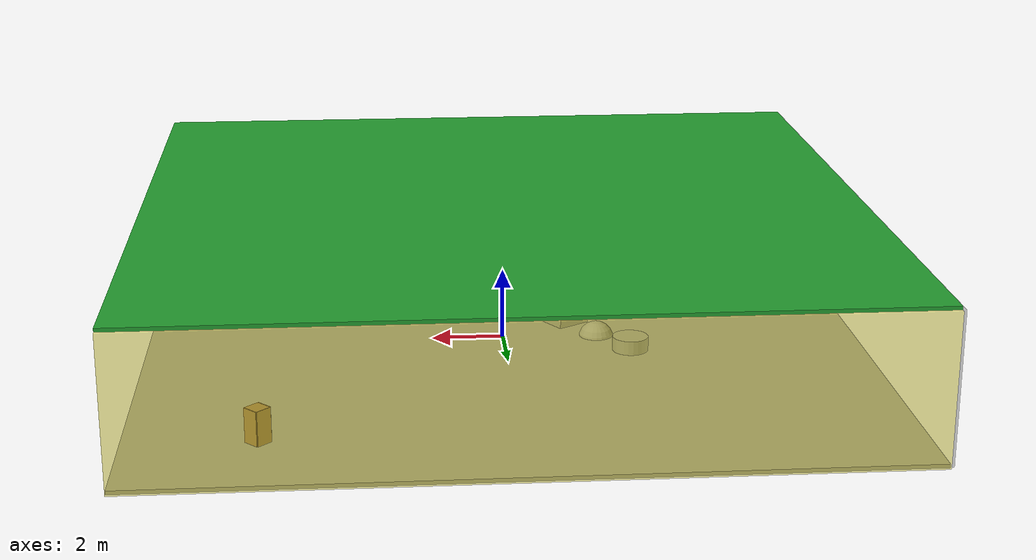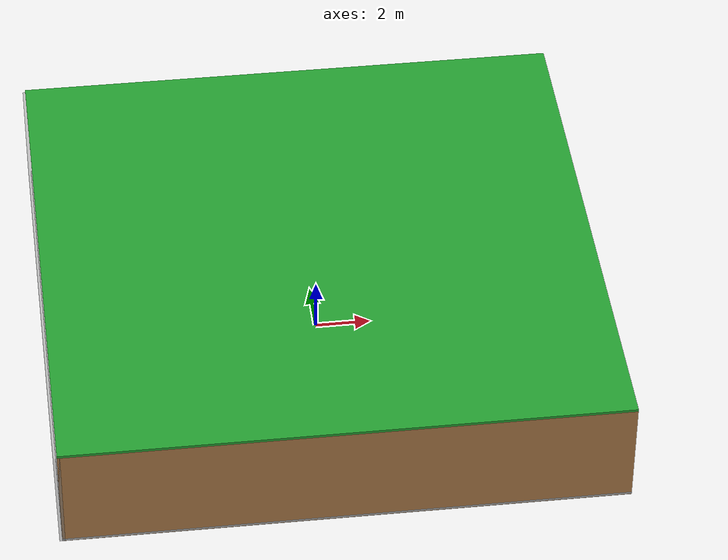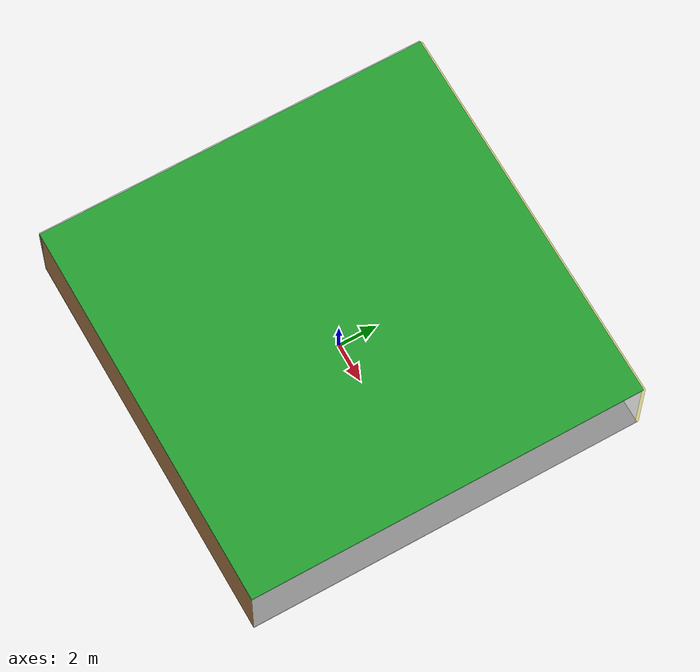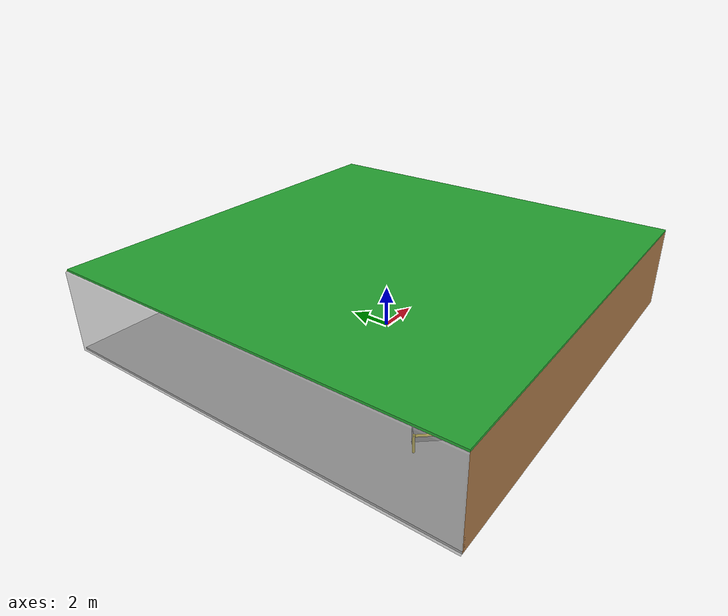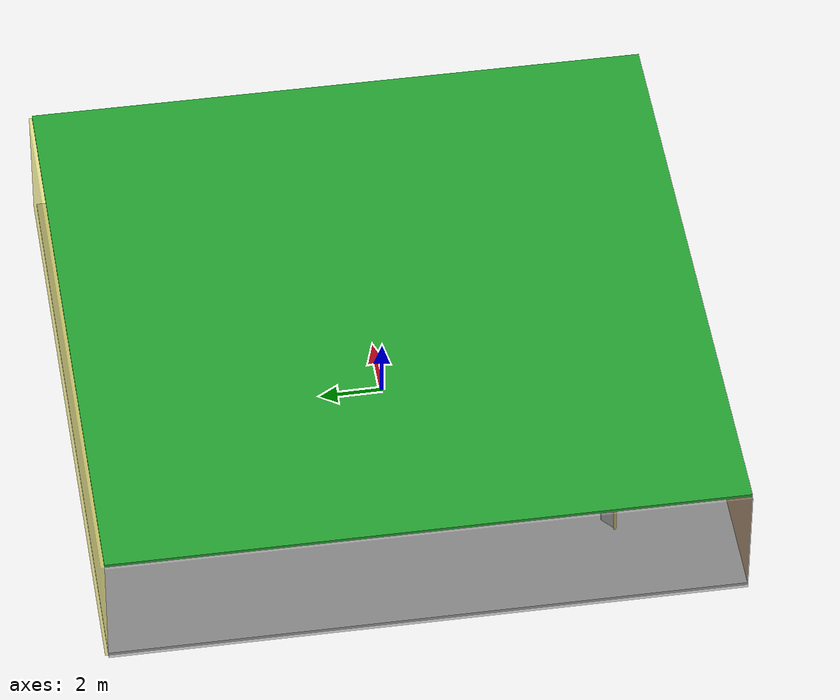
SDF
<sdf version="1.4">
 <world name="default">
  <physics type="ode">
   <max_step_size>0.001</max_step_size>
   <real_time_factor>1</real_time_factor>
   <real_time_update_rate>1000</real_time_update_rate>
   <gravity>0 0 -9.8</gravity>
  </physics>
  <scene><ambient>0.4 0.4 0.4 1</ambient><background>0.7 0.7 0.7 1</background><shadows>1</shadows></scene>
  <model name="Surrounding">
   <static>1</static>
   <link name="Ceiling">
    <collision name="Ceiling_Collision"><geometry><box><size>20 20 0.1</size></box></geometry></collision>
    <visual name="Ceiling_Visual">
     <geometry><box><size>20 20 0.1</size></box></geometry>
     <material>
      <script><uri>file://media/materials/scripts/gazebo.material</uri><name>Gazebo/Green</name></script>
     </material>
    </visual>
    <pose>0 0 4.05 0 0 0</pose>
   </link>
   <link name="Wall_South">
    <collision name="Wall_South_Collision">
     <geometry><box><size>20 0 4</size></box></geometry>
     <pose>0 0 2 0 -0 0</pose>
    </collision>
    <visual name="Wall_South_Visual">
     <pose>0 0 2 0 -0 0</pose>
     <geometry><box><size>20 0 4</size></box></geometry>
     <material>
      <script><uri>file://media/materials/scripts/gazebo.material</uri><name>Gazebo/Wood</name></script>
     </material>
    </visual>
    <velocity_decay><linear>0</linear><angular>0</angular></velocity_decay>
    <pose>0 -10 0 0 -0 0</pose>
   </link>
   <link name="Wall_East">
    <collision name="Wall_21_Collision">
     <geometry><box><size>20 0 4</size></box></geometry>
     <pose>0 0 2 0 -0 0</pose>
    </collision>
    <visual name="Wall_21_Visual">
     <pose>0 0 2 0 -0 0</pose>
     <geometry><box><size>20 0 4</size></box></geometry>
     <material>
      <script><uri>file://media/materials/scripts/gazebo.material</uri><name>Gazebo/GreyTransparent</name></script>
     </material>
    </visual>
    <velocity_decay><linear>0</linear><angular>0</angular></velocity_decay>
    <pose>10 0 0 0 -0 1.5708</pose>
   </link>
   <link name="Wall_North">
    <collision name="Wall_22_Collision">
     <geometry><box><size>20 0.2 4</size></box></geometry>
     <pose>0 0 2 0 -0 0</pose>
    </collision>
    <visual name="Wall_22_Visual">
     <pose>0 0 2 0 -0 0</pose>
     <geometry><box><size>20 0.2 4</size></box></geometry>
     <material>
      <script>
       <uri>file://media/materials/scripts/gazebo.material</uri>
       <name>Gazebo/YellowTransparent</name>
      </script>
     </material>
    </visual>
    <velocity_decay><linear>0</linear><angular>0</angular></velocity_decay>
    <pose>0 10 0 0 -0 0</pose>
   </link>
   <link name="Wall_West">
    <collision name="Wall_23_Collision">
     <geometry><box><size>20 0.2 4</size></box></geometry>
     <pose>0 0 2 0 -0 0</pose>
    </collision>
    <visual name="Wall_23_Visual">
     <pose>0 0 2 0 -0 0</pose>
     <geometry><box><size>20 0.2 4</size></box></geometry>
     <material>
      <script><uri>file://media/materials/scripts/gazebo.material</uri><name>Gazebo/GreyTransparent</name></script>
     </material>
    </visual>
    <velocity_decay><linear>0</linear><angular>0</angular></velocity_decay>
    <pose>-10 0 0 0 0 -1.5708</pose>
   </link>
   <link name="Ground_link">
    <collision name="collision">
     <pose>0 0 .05 0 -0 0</pose>
     <geometry><box><size>20 20 0.1</size></box></geometry>
    </collision>
    <visual name="visual">
     <pose>0 0 .05 0 -0 0</pose>
     <geometry><box><size>20 20 0.1</size></box></geometry>
     <material>
      <script><uri>file://media/materials/scripts/gazebo.material</uri><name>Gazebo/PioneerBody</name></script>
     </material>
    </visual>
   </link>
   <static>1</static>
  </model>
  <spherical_coordinates>
   <surface_model>EARTH_WGS84</surface_model>
   <latitude_deg>0</latitude_deg>
   <longitude_deg>0</longitude_deg>
   <elevation>0</elevation>
   <heading_deg>0</heading_deg>
  </spherical_coordinates>
  <light name="lightball_0" type="diffuse">
   <diffuse>0.8 0.8 0.8 1</diffuse>
   <specular>0.2 0.2 0.2 1</specular>
   <attenuation>
    <range>100</range>
    <constant>0.7</constant>
    <linear>0.01</linear>
    <quadratic>0.001</quadratic>
   </attenuation>
   <direction>-0.5 0.1 -0.9</direction>
   <pose>4.11773153546 -2.31514935674 1.01867431596 0 0 0</pose>
  </light>
  <light name="lightball_1" type="diffuse">
   <diffuse>0.8 0.8 0.8 1</diffuse>
   <specular>0.2 0.2 0.2 1</specular>
   <attenuation>
    <range>100</range>
    <constant>0.7</constant>
    <linear>0.01</linear>
    <quadratic>0.001</quadratic>
   </attenuation>
   <direction>-0.5 0.1 -0.9</direction>
   <pose>-0.502159092545 3.6665691886 2.66166178383 0 0 0</pose>
  </light>
  <light name="lightball_2" type="diffuse">
   <diffuse>0.8 0.8 0.8 1</diffuse>
   <specular>0.2 0.2 0.2 1</specular>
   <attenuation>
    <range>100</range>
    <constant>0.7</constant>
    <linear>0.01</linear>
    <quadratic>0.001</quadratic>
   </attenuation>
   <direction>-0.5 0.1 -0.9</direction>
   <pose>2.20493953064 9.53964335167 3.49362148469 0 0 0</pose>
  </light>
  <light name="lightball_3" type="diffuse">
   <diffuse>0.8 0.8 0.8 1</diffuse>
   <specular>0.2 0.2 0.2 1</specular>
   <attenuation>
    <range>100</range>
    <constant>0.7</constant>
    <linear>0.01</linear>
    <quadratic>0.001</quadratic>
   </attenuation>
   <direction>-0.5 0.1 -0.9</direction>
   <pose>9.01099780739 4.41052425676 2.01953405562 0 0 0</pose>
  </light>
  <light name="lightball_4" type="diffuse">
   <diffuse>0.8 0.8 0.8 1</diffuse>
   <specular>0.2 0.2 0.2 1</specular>
   <attenuation>
    <range>100</range>
    <constant>0.7</constant>
    <linear>0.01</linear>
    <quadratic>0.001</quadratic>
   </attenuation>
   <direction>-0.5 0.1 -0.9</direction>
   <pose>-6.96503080337 -7.27654498173 1.32230798804 0 0 0</pose>
  </light>
  <include>
   <uri>model://robocup_3Dsim_goal</uri>
   <pose>-6.44823791045 -7.11006089313 0 0 0 0.707372312102</pose>
  </include>
  <include><uri>model://cabinet</uri><pose>-0.799022290318 -1.33877638145 0 0 0 1.45754416499</pose></include>
  <include>
   <uri>model://textured_shapes</uri>
   <pose>-2.65049747915 0.326776125966 0 0 0 0.567188503378</pose>
  </include>
  <include><uri>model://cabinet</uri><pose>6.59269812737 7.38462053491 0 0 0 2.33553564704</pose></include>
 </world>
</sdf>

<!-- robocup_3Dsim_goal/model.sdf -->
<sdf version="1.5">
  <model name="robocup_3d_goal">
    <static>true</static>
    <link name="left_post">
      <pose>0 1.05 0.45 0 0 0</pose>
      <collision name="collision">
        <geometry>
          <cylinder>
            <radius>0.05</radius>
            <length>0.9</length>
          </cylinder>
        </geometry>
      </collision>
      <visual name="visual">
        <geometry>
          <cylinder>
            <radius>0.05</radius>
            <length>0.9</length>
          </cylinder>
        </geometry>
        <material>
          <script>
            <uri>file://media/materials/scripts/gazebo.material</uri>
            <name>Gazebo/ZincYellow</name>
          </script>
        </material>
      </visual>
    </link>
    <link name="left_support_horiz_lower">
      <pose>0.30 1.05 0.01 0 0 0</pose>
      <collision name="collision">
        <geometry>
          <box>
            <size>0.50 0.02 0.02</size>
          </box>
        </geometry>
      </collision>
      <visual name="visual">
        <geometry>
          <box>
            <size>0.50 0.02 0.02</size>
          </box>
        </geometry>
        <material>
          <script>
            <uri>file://media/materials/scripts/gazebo.material</uri>
            <name>Gazebo/White</name>
          </script>
        </material>
      </visual>
    </link>
    <link name="left_support_horiz_upper">
      <pose>0.30 1.05 0.79 0 0 0</pose>
      <collision name="collision">
        <geometry>
          <box>
            <size>0.50 0.02 0.02</size>
          </box>
        </geometry>
      </collision>
      <visual name="visual">
        <geometry>
          <box>
            <size>0.50 0.02 0.02</size>
          </box>
        </geometry>
        <material>
          <script>
            <uri>file://media/materials/scripts/gazebo.material</uri>
            <name>Gazebo/White</name>
          </script>
        </material>
      </visual>
    </link>
    <link name="left_support_vertical">
      <pose>0.56 1.05 0.4 0 1.5708 0</pose>
      <collision name="collision">
        <geometry>
          <box>
            <size>0.80 0.02 0.02</size>
          </box>
        </geometry>
      </collision>
      <visual name="visual">
        <geometry>
          <box>
            <size>0.80 0.02 0.02</size>
          </box>
        </geometry>
        <material>
          <script>
            <uri>file://media/materials/scripts/gazebo.material</uri>
            <name>Gazebo/White</name>
          </script>
        </material>
      </visual>
    </link>
    <link name="right_support_horiz_lower">
      <pose>0.30 -1.05 0.01 0 0 0</pose>
      <collision name="collision">
        <geometry>
          <box>
            <size>0.50 0.02 0.02</size>
          </box>
        </geometry>
      </collision>
      <visual name="visual">
        <geometry>
          <box>
            <size>0.50 0.02 0.02</size>
          </box>
        </geometry>
        <material>
          <script>
            <uri>file://media/materials/scripts/gazebo.material</uri>
            <name>Gazebo/White</name>
          </script>
        </material>
      </visual>
    </link>
    <link name="right_support_horiz_upper">
      <pose>0.30 -1.05 0.79 0 0 0</pose>
      <collision name="collision">
        <geometry>
          <box>
            <size>0.50 0.02 0.02</size>
          </box>
        </geometry>
      </collision>
      <visual name="visual">
        <geometry>
          <box>
            <size>0.50 0.02 0.02</size>
          </box>
        </geometry>
        <material>
          <script>
            <uri>file://media/materials/scripts/gazebo.material</uri>
            <name>Gazebo/White</name>
          </script>
        </material>
      </visual>
    </link>
    <link name="right_support_vertical">
      <pose>0.56 -1.05 0.4 0 1.5708 0</pose>
      <collision name="collision">
        <geometry>
          <box>
            <size>0.80 0.02 0.02</size>
          </box>
        </geometry>
      </collision>
      <visual name="visual">
        <geometry>
          <box>
            <size>0.80 0.02 0.02</size>
          </box>
        </geometry>
        <material>
          <script>
            <uri>file://media/materials/scripts/gazebo.material</uri>
            <name>Gazebo/White</name>
          </script>
        </material>
      </visual>
    </link>
    <link name="center_support_horiz_lower">
      <pose>0.56 0 0.01 0 1.5708 0</pose>
      <collision name="collision">
        <geometry>
          <box>
            <size>0.02 2.08 0.02</size>
          </box>
        </geometry>
      </collision>
      <visual name="visual">
        <geometry>
          <box>
            <size>0.02 2.08 0.02</size>
          </box>
        </geometry>
        <material>
          <script>
            <uri>file://media/materials/scripts/gazebo.material</uri>
            <name>Gazebo/White</name>
          </script>
        </material>
      </visual>
    </link>
    <link name="center_support_horiz_upper">
      <pose>0.56 0 0.79 0 1.5708 0</pose>
      <collision name="collision">
        <geometry>
          <box>
            <size>0.02 2.08 0.02</size>
          </box>
        </geometry>
      </collision>
      <visual name="visual">
        <geometry>
          <box>
            <size>0.02 2.08 0.02</size>
          </box>
        </geometry>
        <material>
          <script>
            <uri>file://media/materials/scripts/gazebo.material</uri>
            <name>Gazebo/White</name>
          </script>
        </material>
      </visual>
    </link>
    <link name="right_post">
      <pose>0 -1.05 0.45 0 0 0</pose>
      <collision name="collision">
        <geometry>
          <cylinder>
            <radius>0.05</radius>
            <length>0.9</length>
          </cylinder>
        </geometry>
      </collision>
      <visual name="visual">
        <geometry>
          <cylinder>
            <radius>0.05</radius>
            <length>0.9</length>
          </cylinder>
        </geometry>
        <material>
          <script>
            <uri>file://media/materials/scripts/gazebo.material</uri>
            <name>Gazebo/ZincYellow</name>
          </script>
        </material>
      </visual>
    </link>
    <link name="crossbar">
      <pose>0 0 0.85 1.57 1.57 0</pose>
      <collision name="collision">
        <geometry>
          <cylinder>
            <radius>0.05</radius>
            <length>2.0</length>
          </cylinder>
        </geometry>
      </collision>
      <visual name="visual">
        <geometry>
          <cylinder>
            <radius>0.05</radius>
            <length>2.0</length>
          </cylinder>
        </geometry>
        <material>
          <script>
            <uri>file://media/materials/scripts/gazebo.material</uri>
            <name>Gazebo/ZincYellow</name>
          </script>
        </material>
      </visual>
    </link>
    <link name="center_net">
      <pose>0.56 0 0.40 0 0 0</pose>
      <collision name="collision">
        <geometry>
          <box>
            <size>0.01 2.1 0.80</size>
          </box>
        </geometry>
      </collision>
      <visual name="visual">
        <geometry>
          <box>
            <size>0.01 2.1 0.80</size>
          </box>
        </geometry>
        <material>
          <script>
            <uri>model://../model_source/models/robocup09_spl_field/materials/scripts/</uri>
            <uri>model://../model_source/models/robocup09_spl_field/materials/textures/</uri>
            <name>RoboCup/Net</name>
          </script>
        </material>
      </visual>
    </link>
    <link name="left_net">
      <pose>0.30 1.05 0.40 0 0 0</pose>
      <collision name="collision">
        <geometry>
          <box>
            <size>0.50 0.01 0.76</size>
          </box>
        </geometry>
      </collision>
      <visual name="visual">
        <geometry>
          <box>
            <size>0.50 0.01 0.76</size>
          </box>
        </geometry>
        <material>
          <script>
            <uri>model://../model_source/models/robocup09_spl_field/materials/scripts/</uri>
            <uri>model://../model_source/models/robocup09_spl_field/materials/textures/</uri>
            <name>RoboCup/Net</name>
          </script>
        </material>
      </visual>
    </link>
    <link name="right_net">
      <pose>0.30 -1.05 0.40 0 0 0</pose>
      <collision name="collision">
        <geometry>
          <box>
            <size>0.50 0.01 0.76</size>
          </box>
        </geometry>
      </collision>
      <visual name="visual">
        <geometry>
          <box>
            <size>0.50 0.01 0.76</size>
          </box>
        </geometry>
        <material>
          <script>
            <uri>model://../model_source/models/robocup09_spl_field/materials/scripts/</uri>
            <uri>model://../model_source/models/robocup09_spl_field/materials/textures/</uri>
            <name>RoboCup/Net</name>
          </script>
        </material>
      </visual>
    </link>
  </model>
</sdf>

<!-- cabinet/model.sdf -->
<sdf version="1.5">
  <model name="cabinet">
    <static>true</static>
    <link name="cabinet_bottom_plate">
      <inertial>
        <pose>0 0 -1 0 0 0</pose>
        <inertia>
          <ixx>2.050000</ixx>
          <ixy>0</ixy>
          <ixz>0</ixz>
          <iyy>2.050000</iyy>
          <iyz>0</iyz>
          <izz>2.050000</izz>
        </inertia>
        <mass>25.000000</mass>
      </inertial>
      <collision name="cabinet_bottom_plate_geom">
        <pose>0 0 0.010000 0 0 0</pose>
        <geometry>
          <box>
            <size>0.450000 0.450000 0.020000</size>
          </box>
        </geometry>
      </collision>
      <visual name="cabinet_bottom_plate_geom_visual">
        <pose>0 0 0.010000 0 0 0</pose>
        <geometry>
          <box>
            <size>0.450000 0.450000 0.020000</size>
          </box>
        </geometry>
        <material>
          <script>
            <uri>model://media/materials/scripts/gazebo.material</uri>
            <name>Gazebo/Wood</name>
          </script>
        </material>
      </visual>
      <collision name="cabinet_bottom_plate_geom_cabinet_back_plate">
        <pose>0.235000 0 0.510000 0 0 0</pose>
        <geometry>
          <box>
            <size>0.020000 0.450000 1.020000</size>
          </box>
        </geometry>
      </collision>
      <visual name="cabinet_bottom_plate_geom_cabinet_back_plate_visual">
        <pose>0.235000 0 0.510000 0 0 0</pose>
        <geometry>
          <box>
            <size>0.020000 0.450000 1.020000</size>
          </box>
        </geometry>
        <material>
          <script>
            <uri>model://media/materials/scripts/gazebo.material</uri>
            <name>Gazebo/Wood</name>
          </script>
        </material>
      </visual>
      <collision name="cabinet_bottom_plate_geom_cabinet_left_plate">
        <pose>0 0.235000 0.510000 0 0 0</pose>
        <geometry>
          <box>
            <size>0.450000 0.020000 1.020000</size>
          </box>
        </geometry>
      </collision>
      <visual name="cabinet_bottom_plate_geom_cabinet_left_plate_visual">
        <pose>0 0.235000 0.510000 0 0 0</pose>
        <geometry>
          <box>
            <size>0.450000 0.020000 1.020000</size>
          </box>
        </geometry>
        <material>
          <script>
            <uri>model://media/materials/scripts/gazebo.material</uri>
            <name>Gazebo/Wood</name>
          </script>
        </material>
      </visual>
      <collision name="cabinet_bottom_plate_geom_cabinet_middle_plate">
        <pose>0 0 0.510000 0 0 0</pose>
        <geometry>
          <box>
            <size>0.450000 0.450000 0.020000</size>
          </box>
        </geometry>
      </collision>
      <visual name="cabinet_bottom_plate_geom_cabinet_middle_plate_visual">
        <pose>0 0 0.510000 0 0 0</pose>
        <geometry>
          <box>
            <size>0.450000 0.450000 0.020000</size>
          </box>
        </geometry>
        <material>
          <script>
            <uri>model://media/materials/scripts/gazebo.material</uri>
            <name>Gazebo/Wood</name>
          </script>
        </material>
      </visual>
      <collision name="cabinet_bottom_plate_geom_cabinet_right_plate">
        <pose>0 -0.235000 0.510000 0 0 0</pose>
        <geometry>
          <box>
            <size>0.450000 0.020000 1.020000</size>
          </box>
        </geometry>
      </collision>
      <visual name="cabinet_bottom_plate_geom_cabinet_right_plate_visual">
        <pose>0 -0.235000 0.510000 0 0 0</pose>
        <geometry>
          <box>
            <size>0.450000 0.020000 1.020000</size>
          </box>
        </geometry>
        <material>
          <script>
            <uri>model://media/materials/scripts/gazebo.material</uri>
            <name>Gazebo/Wood</name>
          </script>
        </material>
      </visual>
      <collision name="cabinet_bottom_plate_geom_cabinet_top_plate">
        <pose>0 0 1.010000 0 0 0</pose>
        <geometry>
          <box>
            <size>0.450000 0.450000 0.020000</size>
          </box>
        </geometry>
      </collision>
      <visual name="cabinet_bottom_plate_geom_cabinet_top_plate_visual">
        <pose>0 0 1.010000 0 0 0</pose>
        <geometry>
          <box>
            <size>0.450000 0.450000 0.020000</size>
          </box>
        </geometry>
        <material>
          <script>
            <uri>model://media/materials/scripts/gazebo.material</uri>
            <name>Gazebo/Wood</name>
          </script>
        </material>
      </visual>
    </link>
  </model>
</sdf>

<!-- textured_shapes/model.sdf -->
<sdf version="1.6">
  <model name="textured_shapes">
    <pose>0 0 0.5 0 0 0</pose>
    <link name="box">
      <pose>0 -1.5 0 0 0 0</pose>
      <collision name="collision">
        <geometry>
          <box>
            <size>1 1 1</size>
          </box>
        </geometry>
      </collision>
      <visual name="visual">
        <geometry>
          <box>
            <size>1 1 1</size>
          </box>
        </geometry>
        <material>
          <script>
            <uri>model://../model_source/models/textured_shapes/materials/scripts</uri>
            <uri>model://../model_source/models/textured_shapes/materials/textures</uri>
            <name>TexturedShape/Squares</name>
          </script>
        </material>
      </visual>
    </link>
    <link name="sphere">
      <collision name="collision">
        <geometry>
          <sphere>
            <radius>0.5</radius>
          </sphere>
        </geometry>
      </collision>
      <visual name="visual">
        <geometry>
          <sphere>
            <radius>0.5</radius>
          </sphere>
        </geometry>
        <material>
          <script>
            <uri>model://../model_source/models/textured_shapes/materials/scripts</uri>
            <uri>model://../model_source/models/textured_shapes/materials/textures</uri>
            <name>TexturedShape/Squares</name>
          </script>
        </material>
      </visual>
    </link>
    <link name="cylinder">
      <pose>0 1.5 0 0 0 0</pose>
      <collision name="collision">
        <geometry>
          <cylinder>
            <radius>0.5</radius>
            <length>1</length>
          </cylinder>
        </geometry>
      </collision>
      <visual name="visual">
        <geometry>
          <cylinder>
            <radius>0.5</radius>
            <length>1</length>
          </cylinder>
        </geometry>
        <material>
          <script>
            <uri>model://../model_source/models/textured_shapes/materials/scripts</uri>
            <uri>model://../model_source/models/textured_shapes/materials/textures</uri>
            <name>TexturedShape/Squares</name>
          </script>
        </material>
      </visual>
    </link>
  </model>
</sdf>
